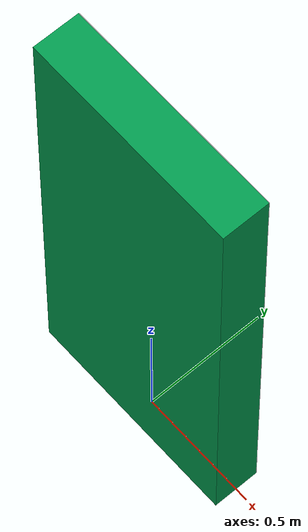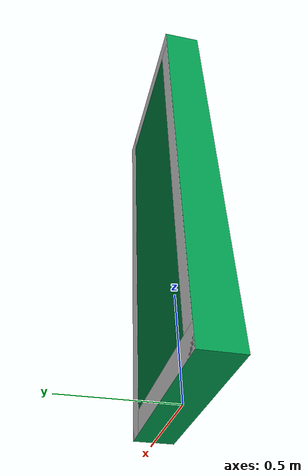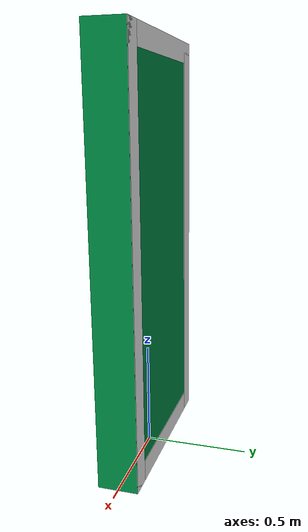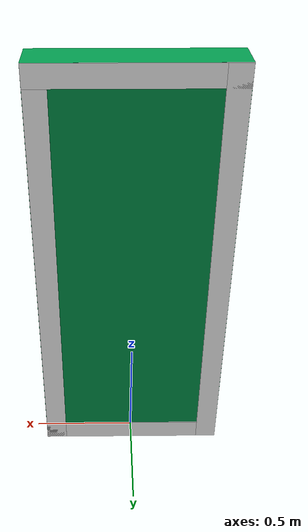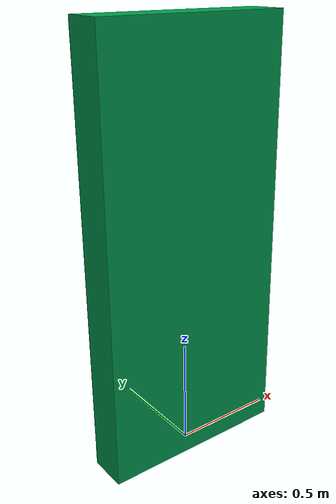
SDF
<?xml version='1.0'?>
<sdf version='1.7'>
  <model name='fire_exit_green'>
    <link name='link_1'>
      <pose>0 0 0.993 0 0 0</pose>

      <visual name='visual'>
        <geometry>
          <box>
            <size>0.891572 0.186765 1.98613</size>
          </box>
        </geometry>
        <material>
          <ambient>0.0 0.6 0.3 1</ambient>
          <diffuse>0.0 0.6 0.3 1</diffuse>
          <specular>0.2 0.2 0.2 1</specular>
        </material>
      </visual>

      <visual name='border_left'>
        <pose>0.395 0.094 0 0 0 0</pose>
        <geometry>
          <box>
            <size>0.1 0.002 1.986</size>
          </box>
        </geometry>
        <material>
          <ambient>1 1 1 1</ambient>
          <diffuse>1 1 1 1</diffuse>
        </material>
      </visual>

      <visual name='border_right'>
        <pose>-0.395 0.094 0 0 0 0</pose>
        <geometry>
          <box>
            <size>0.1 0.002 1.986</size>
          </box>
        </geometry>
        <material>
          <ambient>1 1 1 1</ambient>
          <diffuse>1 1 1 1</diffuse>
        </material>
      </visual>

      <visual name='border_top'>
        <pose>0 0.094 0.943 0 0 0</pose>
        <geometry>
          <box>
            <size>0.891 0.002 0.1</size>
          </box>
        </geometry>
        <material>
          <ambient>1 1 1 1</ambient>
          <diffuse>1 1 1 1</diffuse>
        </material>
      </visual>

      <visual name='border_bottom'>
        <pose>0 0.094 -0.943 0 0 0</pose>
        <geometry>
          <box>
            <size>0.891 0.002 0.1</size>
          </box>
        </geometry>
        <material>
          <ambient>1 1 1 1</ambient>
          <diffuse>1 1 1 1</diffuse>
        </material>
      </visual>

      <collision name='collision'>
        <geometry>
          <box>
            <size>0.891572 0.186765 1.98613</size>
          </box>
        </geometry>
      </collision>
    </link>
    <static>0</static>
    <allow_auto_disable>1</allow_auto_disable>
  </model>
</sdf>
